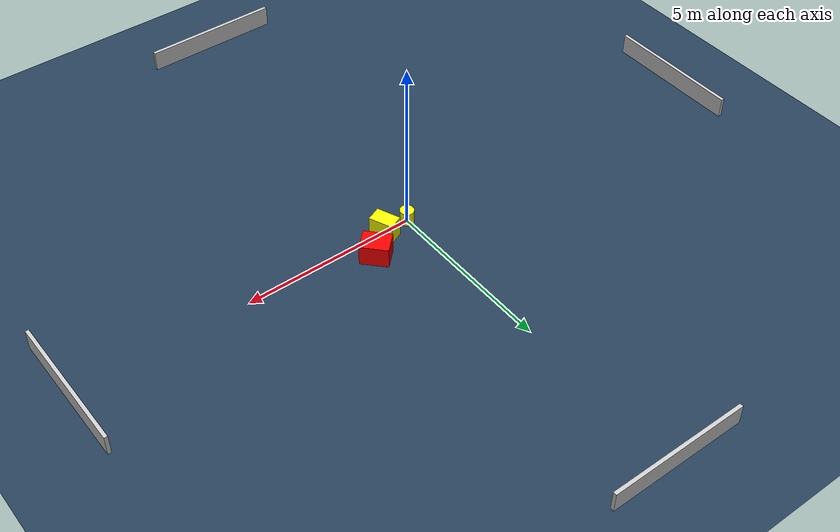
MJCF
<?xml version="1.0" ?>
<mujoco model="generated_environment">
  <option timestep="0.01" integrator="RK4" cone="elliptic"/>
  <default>
    <geom density="1"/>
  </default>
  <asset>
    <texture builtin="gradient" height="3072" name="skybox" rgb1="0.3 0.5 0.7" rgb2="0 0 0" type="skybox" width="512"/>
    <texture builtin="checker" height="300" name="groundplane" rgb1="0.2 0.3 0.4" rgb2="0.1 0.2 0.3" type="2d" width="300"/>
    <material name="groundplane" reflectance="0.2" texrepeat="5 5" texture="groundplane"/>
  </asset>
  <worldbody>
    <light dir="0 0 -1" directional="true" pos="0 0 1.5"/>
    <geom condim="3" friction="0.5 0.005 0.001" material="groundplane" name="floor" pos="0 0 0" size="0 0 0.05" type="plane"/>
    <body name="walls">
      <geom name="wall_1" condim="4" pos="-10.0 0.0 0.3" rgba="0.800000011920929 0.800000011920929 0.800000011920929 1.0" size="0.05 2.0 0.3" type="box"/>
      <geom name="wall_2" condim="4" pos="10.0 0.0 0.3" rgba="0.800000011920929 0.800000011920929 0.800000011920929 1.0" size="0.05 2.0 0.3" type="box"/>
      <geom name="wall_3" condim="4" pos="0.0 -10.0 0.3" rgba="0.800000011920929 0.800000011920929 0.800000011920929 1.0" size="2.0 0.05 0.3" type="box"/>
      <geom name="wall_4" condim="4" pos="0.0 10.0 0.3" rgba="0.800000011920929 0.800000011920929 0.800000011920929 1.0" size="2.0 0.05 0.3" type="box"/>
    </body>
    <body name="robot">
      <joint name="joint_x" type="slide" pos="0 0 0" axis="1 0 0"/>
      <joint name="joint_y" type="slide" pos="0 0 0" axis="0 1 0"/>
      <geom name="robot" type="cylinder" pos="0.0 0.0 0.2" size="0.2 0.2 0.0" mass="5.0" friction="1.0 0.005 0.0001" condim="4" rgba="1.0 1.0 0.0 1.0"/>
    </body>
    <body name="obstacle_1_movable">
      <geom name="obstacle_1_movable" condim="4" pos="0.7824708821124462 0.057780746510922285 0.3" euler="0 0 112.7047920325054" friction="0.0 0.005 0.001" rgba="1.0 1.0 0.0 1.0" size="0.34717827207914764 0.22060010221256382 0.3" type="box" mass="0.1"/>
      <joint type="free"/>
    </body>
    <body name="obstacle_2_static">
      <geom name="obstacle_2_static" condim="4" pos="1.4731338622169865 0.6057395347403517 0.3" euler="0 0 133.25850952773894" friction="0.0 0.005 0.001" rgba="1.0 0.0 0.0 1.0" size="0.3961807955642238 0.31497960270686304 0.3" type="box"/>
    </body>
  </worldbody>
  <actuator>
    <motor name="actuator_x" joint="joint_x" gear="1" ctrlrange="-1 1"/>
    <motor name="actuator_y" joint="joint_y" gear="1" ctrlrange="-1 1"/>
  </actuator>
</mujoco>
